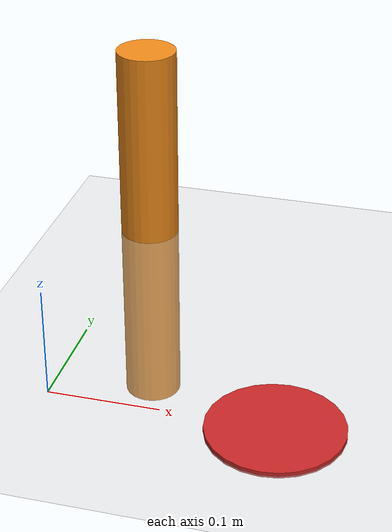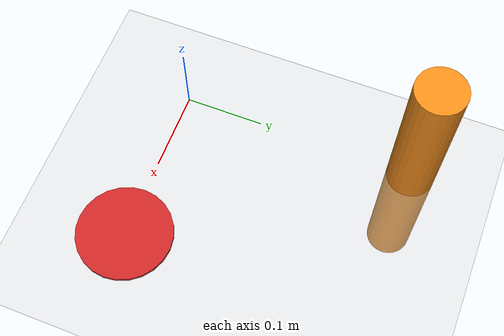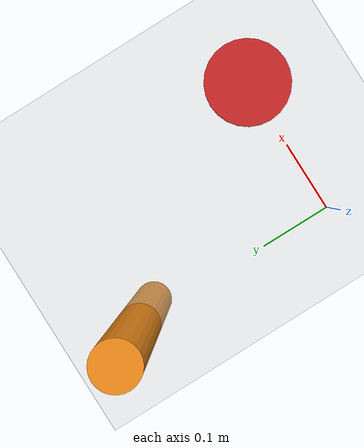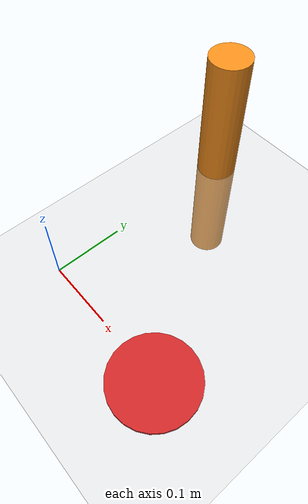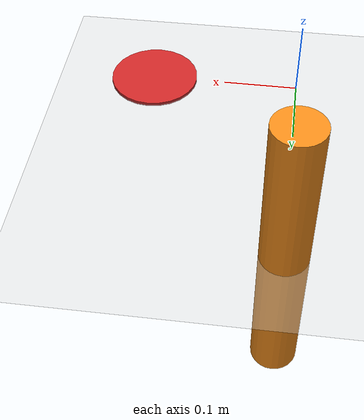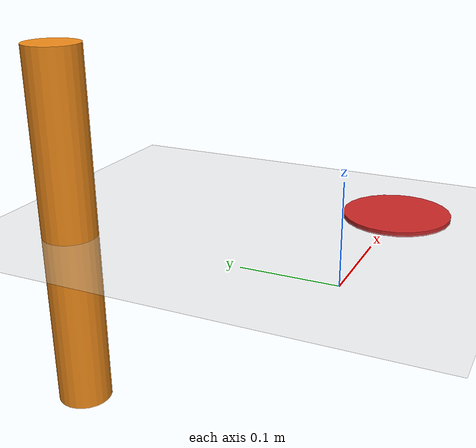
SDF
<sdf version='1.6'>
  <world name='default'>
    <light name='sun' type='directional'>
      <cast_shadows>1</cast_shadows>
      <pose frame=''>0 0 10 0 -0 0</pose>
      <diffuse>0.8 0.8 0.8 1</diffuse>
      <specular>0.2 0.2 0.2 1</specular>
      <attenuation>
        <range>1000</range>
        <constant>0.9</constant>
        <linear>0.01</linear>
        <quadratic>0.001</quadratic>
      </attenuation>
      <direction>-0.5 0.1 -0.9</direction>
    </light>
    <model name='ground_plane'>
      <static>1</static>
      <link name='link'>
        <collision name='collision'>
          <geometry>
            <plane>
              <normal>0 0 1</normal>
              <size>100 100</size>
            </plane>
          </geometry>
          <surface>
            <contact>
              <collide_bitmask>65535</collide_bitmask>
              <ode/>
            </contact>
            <friction>
              <ode>
                <mu>100</mu>
                <mu2>50</mu2>
              </ode>
              <torsional>
                <ode/>
              </torsional>
            </friction>
            <bounce/>
          </surface>
          <max_contacts>10</max_contacts>
        </collision>
        <visual name='visual'>
          <cast_shadows>0</cast_shadows>
          <geometry>
            <plane>
              <normal>0 0 1</normal>
              <size>100 100</size>
            </plane>
          </geometry>
          <material>
            <script>
              <uri>file://media/materials/scripts/gazebo.material</uri>
              <name>Gazebo/Grey</name>
            </script>
          </material>
        </visual>
        <self_collide>0</self_collide>
        <enable_wind>0</enable_wind>
        <kinematic>0</kinematic>
      </link>
    </model>
    <gravity>0 0 -9.8</gravity>
    <magnetic_field>6e-06 2.3e-05 -4.2e-05</magnetic_field>
    <atmosphere type='adiabatic'/>
    <physics name='default_physics' default='0' type='ode'>
      <max_step_size>0.001</max_step_size>
      <real_time_factor>1</real_time_factor>
      <real_time_update_rate>1000</real_time_update_rate>
    </physics>
    <scene>
      <ambient>0.4 0.4 0.4 1</ambient>
      <background>0.7 0.7 0.7 1</background>
      <shadows>1</shadows>
    </scene>
    <audio>
      <device>default</device>
    </audio>
    <wind/>
    <spherical_coordinates>
      <surface_model>EARTH_WGS84</surface_model>
      <latitude_deg>0</latitude_deg>
      <longitude_deg>0</longitude_deg>
      <elevation>0</elevation>
      <heading_deg>0</heading_deg>
    </spherical_coordinates>
    <model name='candy_bar'>
      <link name='link'>
        <inertial>
          <mass>0.2</mass>
          <origin xyz="0.0 0.5 0.0" rpy="0.0 0.0 0.0"/>
          <inertia>
            <ixx>0.145833</ixx>
            <ixy>0</ixy>
            <ixz>0</ixz>
            <iyy>0.145833</iyy>
            <iyz>0</iyz>
            <izz>0.125</izz>
          </inertia>
          <pose>0 0 0 0 0 0</pose>
        </inertial>
        <self_collide>0</self_collide>
        <enable_wind>0</enable_wind>
        <kinematic>0</kinematic>
        <pose>0.0 0.3 0 0 0 0</pose>
        <gravity>1</gravity>
        <visual name='visual'>
          <geometry>
            <cylinder>
              <radius>0.03</radius>
              <length>0.4</length>
            </cylinder>
          </geometry>
          <material>
            <script>
              <name>Gazebo/Orange</name>
              <uri>file://media/materials/scripts/gazebo.material</uri>
            </script>
            <shader type='pixel'>
              <normal_map>__default__</normal_map>
            </shader>
            <ambient>0.3 0.3 0.3 1</ambient>
            <diffuse>0.7 0.7 0.7 1</diffuse>
            <specular>0.01 0.01 0.01 1</specular>
            <emissive>0 0 0 1</emissive>
          </material>
          <pose>0 0 0 0 -0 0</pose>
          <transparency>0</transparency>
          <cast_shadows>1</cast_shadows>
        </visual>
        <collision name='collision'>
          <laser_retro>0</laser_retro>
          <max_contacts>10</max_contacts>
          <pose>0 0 0 0 -0 0</pose>
          <geometry>
            <cylinder>
              <radius>0.03</radius>
              <length>0.4</length>
            </cylinder>
          </geometry>
          <surface>
            <friction>
              <ode>
                <mu>1000000</mu>
                <mu2>1000000</mu2>
                <fdir1>0 0 0</fdir1>
                <slip1>0</slip1>
                <slip2>0</slip2>
              </ode>
              <torsional>
                <coefficient>1</coefficient>
                <patch_radius>0</patch_radius>
                <surface_radius>0</surface_radius>
                <use_patch_radius>1</use_patch_radius>
                <ode>
                  <slip>0</slip>
                </ode>
              </torsional>
            </friction>
            <bounce>
              <restitution_coefficient>0</restitution_coefficient>
              <threshold>1e+06</threshold>
            </bounce>
            <contact>
              <collide_without_contact>0</collide_without_contact>
              <collide_without_contact_bitmask>1</collide_without_contact_bitmask>
              <collide_bitmask>1</collide_bitmask>
              <ode>
                <soft_cfm>0</soft_cfm>
                <soft_erp>0.2</soft_erp>
                <kp>1e+13</kp>
                <kd>1</kd>
                <max_vel>0.01</max_vel>
                <min_depth>0</min_depth>
              </ode>
              <bullet>
                <split_impulse>1</split_impulse>
                <split_impulse_penetration_threshold>-0.01</split_impulse_penetration_threshold>
                <soft_cfm>0</soft_cfm>
                <soft_erp>0.2</soft_erp>
                <kp>1e+13</kp>
                <kd>1</kd>
              </bullet>
            </contact>
          </surface>
        </collision>
      </link>
      <static>0</static>
      <allow_auto_disable>1</allow_auto_disable>
    </model>
    <model name='spigot_hole'>
      <link name='link'>
        <inertial>
          <mass>5</mass>
          <inertia>
            <ixx>0.145833</ixx>
            <ixy>0</ixy>
            <ixz>0</ixz>
            <iyy>0.145833</iyy>
            <iyz>0</iyz>
            <izz>0.125</izz>
          </inertia>
          <pose>0 -0.05 0 0 -0 0</pose>
        </inertial>
        <self_collide>0</self_collide>
        <enable_wind>0</enable_wind>
        <kinematic>0</kinematic>
        <pose>0.2 0.0 0 0 0 0</pose>
        <gravity>1</gravity>
        <visual name='visual'>
          <geometry>
            <cylinder>
              <radius>0.06</radius>
              <length>0.005</length>
            </cylinder>
          </geometry>
          <material>
            <script>
              <name>Gazebo/Red</name>
              <uri>file://media/materials/scripts/gazebo.material</uri>
            </script>
            <shader type='pixel'>
              <normal_map>__default__</normal_map>
            </shader>
            <ambient>0.3 0.3 0.3 1</ambient>
            <diffuse>0.7 0.7 0.7 1</diffuse>
            <specular>0.01 0.01 0.01 1</specular>
            <emissive>0 0 0 1</emissive>
          </material>
          <pose>0.0 0 0 0 -0 0</pose>
          <transparency>0</transparency>
          <cast_shadows>1</cast_shadows>
        </visual>
        <collision name='collision'>
          <laser_retro>0</laser_retro>
          <max_contacts>10</max_contacts>
          <pose>0 0 0 0 -0 0</pose>
          <geometry>
            <cylinder>
              <radius>0.06</radius>
              <length>0.03</length>
            </cylinder>
          </geometry>
          <surface>
            <friction>
              <ode>
                <mu>10000</mu>
                <mu2>10000</mu2>
                <fdir1>0 0 0</fdir1>
                <slip1>0</slip1>
                <slip2>0</slip2>
              </ode>
              <torsional>
                <coefficient>1</coefficient>
                <patch_radius>0</patch_radius>
                <surface_radius>0</surface_radius>
                <use_patch_radius>1</use_patch_radius>
                <ode>
                  <slip>0</slip>
                </ode>
              </torsional>
            </friction>
            <bounce>
              <restitution_coefficient>0</restitution_coefficient>
              <threshold>1e+06</threshold>
            </bounce>
            <contact>
              <collide_without_contact>0</collide_without_contact>
              <collide_without_contact_bitmask>1</collide_without_contact_bitmask>
              <collide_bitmask>1</collide_bitmask>
              <ode>
                <soft_cfm>0</soft_cfm>
                <soft_erp>0.2</soft_erp>
                <kp>1e+13</kp>
                <kd>1</kd>
                <max_vel>0.01</max_vel>
                <min_depth>0</min_depth>
              </ode>
              <bullet>
                <split_impulse>1</split_impulse>
                <split_impulse_penetration_threshold>-0.01</split_impulse_penetration_threshold>
                <soft_cfm>0</soft_cfm>
                <soft_erp>0.2</soft_erp>
                <kp>1e+13</kp>
                <kd>1</kd>
              </bullet>
            </contact>
          </surface>
        </collision>
      </link>
      <static>0</static>
      <allow_auto_disable>1</allow_auto_disable>
    </model>
  </world>
</sdf>
